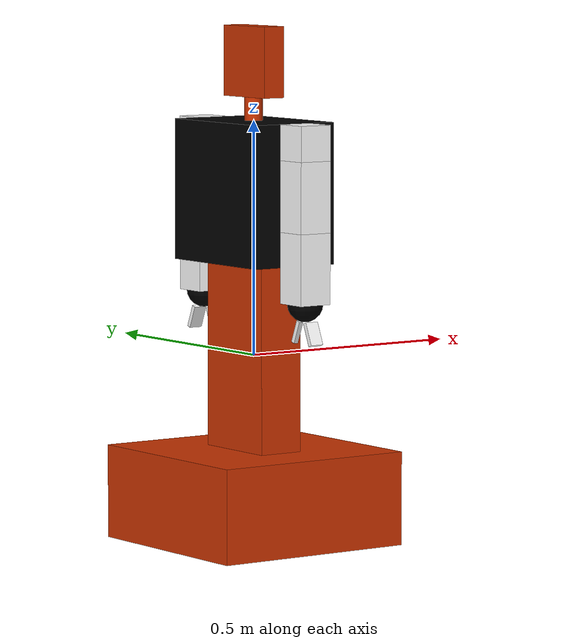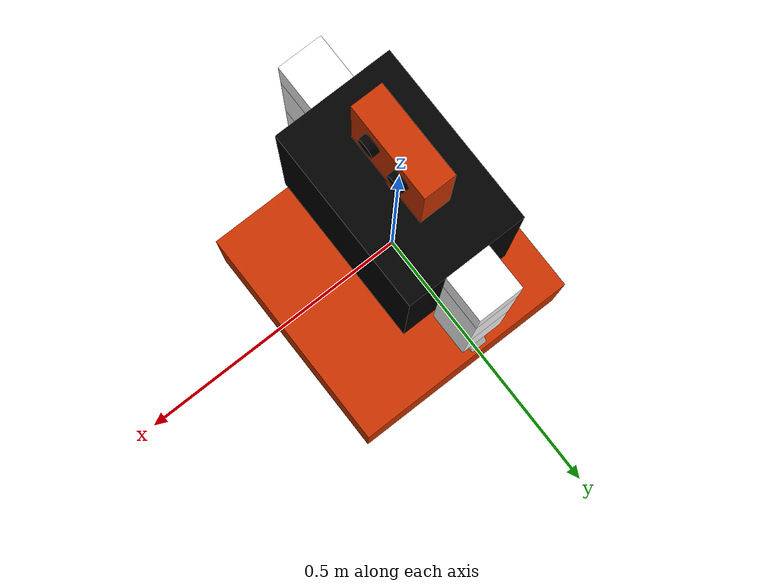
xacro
<?xml version="1.0"?>
<robot xmlns:xacro="http://www.ros.org/wiki/xacro" name="tangerige">

<!-- .......................MACROS.................... -->

  <xacro:macro name="default_physics" params="mass len rad">
  	<collision>
      <geometry>
        <cylinder length="${len}" radius="${rad}"/>
      </geometry>
    </collision>
  	<inertial>
  		<mass value="${mass}" />
  		<inertia ixx="1.0" ixy="0.0" ixz="0.0"
  											 iyy="1.0" iyz="0.0"
  											 izz="1.0" />
  	</inertial>
  	<dynamics damping="0.7" friction="1000.0"/>
  </xacro:macro>

  <xacro:macro name="gazebo_colors" params="name color">
  	<gazebo reference="${name}">
    	<material>Gazebo/${color}</material>
  	</gazebo>
  </xacro:macro>

<!-- ....................... END MACROS.................... -->

<!-- ................BASE................. -->

  <link name="base_laser">
    <visual>
      <geometry>
        <box size="0.2 0.1 0.4"/>
      </geometry>
      <material name="red">
      	<color rgba=".8 .2 0 1"/>
      </material>
      <origin rpy="0 0 1.57075"/>
    </visual>
    <xacro:default_physics mass="6" len="0.4" rad="0.1"/>
  </link>

  <xacro:gazebo_colors name="base_laser" color="Red" />

  <link name="base_link_robot">
    <visual>
      <geometry>
        <box size="0.45 0.45 0.2"/>
      </geometry>
      <material name="red">
      	<color rgba=".8 .2 0 1"/>
      </material>
    </visual>
    <xacro:default_physics mass="10" len="0.2" rad="0.225"/>
  </link>

  <xacro:gazebo_colors name="base_link" color="Red" />

  <joint name="laser_to_base_link" type="revolute">
  	<axis xyz="1 0 0"/>
  	<limit effort="1000.0" lower="0" upper="0" velocity="0"/>
    <parent link="base_laser"/>
    <child link="base_link_robot"/>
    <origin xyz="0 0 -0.3"/>
  </joint>

  <link name="superior_link">
    <visual>
      <geometry>
        <box size="0.3 0.2 0.3"/>
      </geometry>
      <material name="black">
      	<color rgba="0 0 0 1"/>
      </material>
    </visual>
    <xacro:default_physics mass="8" len="0.3" rad="0.15"/>
  </link>

  <xacro:gazebo_colors name="superior_link" color="Black" />

  <joint name="laser_to_superior_link" type="revolute">
  	<axis xyz="1 0 0"/>
  	<limit effort="1000.0" lower="0" upper="0" velocity="0"/>
    <parent link="base_laser"/>
    <child link="superior_link"/>
    <origin rpy="0 0 -1.57075" xyz="0 0 0.35"/>
  </joint>

  <!-- ................END BASE................. -->

  <!-- ................HEAD................. -->

  <link name="neck_link">
    <visual>
      <geometry>
        <cylinder length="0.05" radius="0.02"/>
      </geometry>
      <material name="red"/>
    </visual>
    <xacro:default_physics mass="0.5" len="0.05" rad="0.02"/>
  </link>

  <xacro:gazebo_colors name="neck_link" color="Red" />

  <joint name="superior_to_neck_link" type="revolute">
  	<axis xyz="1 0 0"/>
  	<limit effort="1000.0" lower="0" upper="0" velocity="0"/>
    <parent link="superior_link"/>
    <child link="neck_link"/>
    <origin xyz="0 0 0.175"/>
  </joint>

  <link name="neck_z_revolute">
  	<xacro:default_physics mass="0.01" len="0.01" rad="0.01"/>
  </link>

  <joint name="neck_to_z_revolute" type="revolute">
  	<axis xyz="0 0 1"/>
  	<limit effort="1000.0" lower="-0.7853" upper="0.7853" velocity="5"/>
    <parent link="neck_link"/>
    <child link="neck_z_revolute"/>
  </joint>

  <link name="neck_x_revolute">
  	<xacro:default_physics mass="0.01" len="0.01" rad="0.01"/>
  </link>

  <joint name="z_revolute_to_x_revolute" type="revolute">
  	<axis xyz="1 0 0"/>
  	<limit effort="1000.0" lower="-0.3926" upper="0.3926" velocity="5"/>
    <parent link="neck_z_revolute"/>
    <child link="neck_x_revolute"/>
  </joint>

  <link name="head">
    <visual>
      <geometry>
        <box size="0.15 0.05 0.15"/>
      </geometry>
      <material name="red"/>
    </visual>
    <xacro:default_physics mass="4" len="0.15" rad="0.075"/>
  </link>

  <xacro:gazebo_colors name="head" color="Red" />

  <joint name="revolute_head" type="revolute">
  	<axis xyz="1 0 0"/>
  	<limit effort="1000.0" lower="0" upper="0" velocity="0"/>
    <parent link="neck_x_revolute"/>
    <child link="head"/>
    <origin xyz="0 0 0.1"/>
  </joint>

  <link name="right_eye">
    <visual>
      <geometry>
        <cylinder length="0.015" radius="0.015"/>
      </geometry>
      <material name="black"/>
      <origin rpy="-1.57075 0 0" />
    </visual>
    <xacro:default_physics mass="0.2" len="0.03" rad="0.01"/>
  </link>

  <joint name="right_eye_to_head" type="revolute">
  	<axis xyz="1 0 0"/>
  	<limit effort="1000.0" lower="0" upper="0" velocity="0"/>
    <parent link="head"/>
    <child link="right_eye"/>
    <origin xyz="0.03 0.03 0.03"/>
  </joint>

  <link name="left_eye">
    <visual>
      <geometry>
        <cylinder length="0.015" radius="0.015"/>
      </geometry>
      <material name="black"/>
      <origin rpy="-1.57075 0 0" />
    </visual>
    <xacro:default_physics mass="0.2" len="0.03" rad="0.01"/>
  </link>

  <joint name="left_eye_to_head" type="revolute">
  	<axis xyz="1 0 0"/>
  	<limit effort="1000.0" lower="0" upper="0" velocity="0"/>
    <parent link="head"/>
    <child link="left_eye"/>
    <origin xyz="-0.03 0.03 0.03"/>
  </joint>

  <!-- ................END HEAD................. -->

  <!-- ................RIGHT ARM................. -->

  <link name="right_shoulder">
    <visual>
      <geometry>
        <box size="0.075 0.075 0.075"/>
      </geometry>
      <material name="white">
      	<color rgba="1 1 1 1"/>
      </material>
    </visual>
    <xacro:default_physics mass="2" len="0.075" rad="0.0375"/>
  </link>

  <xacro:gazebo_colors name="right_shoulder" color="Gray" />

  <joint name="right_shoulder_x_revolute" type="revolute">
  	<axis xyz="1 0 0"/>
  	<limit effort="1000.0" lower="-0.785375" upper="1.57075" velocity="5"/>
    <parent link="superior_link"/>
    <child link="right_shoulder"/>
    <origin xyz="0.1875 0 0.1125"/>
  </joint>

  <link name="upper_right_arm_z_revolute">
  	<xacro:default_physics mass="0.01" len="0.01" rad="0.01"/>
  </link>

  <joint name="upper_right_arm_z_revolute" type="revolute">
  	<axis xyz="0 0 1"/>
  	<limit effort="1000.0" lower="-0.3926" upper="0.3926" velocity="5"/>
    <parent link="right_shoulder"/>
    <child link="upper_right_arm_z_revolute"/>
    <origin xyz="0 0 0"/>
  </joint>

  <link name="upper_right_arm_y_revolute">
  	<xacro:default_physics mass="0.01" len="0.01" rad="0.01"/>
  </link>

  <joint name="upper_right_arm_y_revolute" type="revolute">
  	<axis xyz="0 1 0"/>
  	<limit effort="1000.0" lower="-0.3926" upper="0" velocity="5"/>
    <parent link="upper_right_arm_z_revolute"/>
    <child link="upper_right_arm_y_revolute"/>
    <origin xyz="0 0 0"/>
  </joint>

  <link name="upper_right_arm">
    <visual>
      <geometry>
        <box size="0.075 0.075 0.15"/>
      </geometry>
      <material name="white"/>
    </visual>
    <xacro:default_physics mass="3" len="0.15" rad="0.0375"/>
  </link>

  <xacro:gazebo_colors name="upper_right_arm" color="Gray" />

  <joint name="shoulder_to_upper_right_arm" type="revolute">
  	<axis xyz="1 0 0"/>
  	<limit effort="1000.0" lower="0" upper="0" velocity="0"/>
    <parent link="upper_right_arm_y_revolute"/>
    <child link="upper_right_arm"/>
    <origin xyz="0 0 -0.1125"/>
  </joint>

  <link name="lower_right_arm">
    <visual>
      <geometry>
        <box size="0.075 0.075 0.15"/>
      </geometry>
      <material name="white"/>
    </visual>
    <xacro:default_physics mass="0.5" len="0.15" rad="0.0375"/>
  </link>

  <xacro:gazebo_colors name="lower_right_arm" color="Gray" />

  <joint name="upper_to_lower_right_arm" type="revolute">
  	<axis xyz="1 0 0"/>
  	<limit effort="1000.0" lower="0" upper="0.3926" velocity="5"/>
    <parent link="upper_right_arm"/>
    <child link="lower_right_arm"/>
    <origin xyz="0 0 -0.15"/>
  </joint>

  <link name="wrist_right_arm_z_revolute">
  	<xacro:default_physics mass="0.01" len="0.01" rad="0.01"/>
  </link>

  <joint name="wrist_right_arm_z_revolute" type="revolute">
  	<axis xyz="0 0 1"/>
  	<limit effort="1000.0" lower="-2" upper="2" velocity="5"/>
    <parent link="lower_right_arm"/>
    <child link="wrist_right_arm_z_revolute"/>
  </joint>

  <link name="wrist_right_arm_x_revolute">
  	<xacro:default_physics mass="0.01" len="0.01" rad="0.01"/>
  </link>

  <joint name="wrist_right_arm_x_revolute" type="revolute">
  	<axis xyz="1 0 0"/>
  	<limit effort="1000.0" lower="-0.3926" upper="0.3926" velocity="5"/>
    <parent link="wrist_right_arm_z_revolute"/>
    <child link="wrist_right_arm_x_revolute"/>
  </joint>

  <link name="wrist_right_arm">
    <visual>
      <geometry>
        <sphere radius="0.0375"/>
      </geometry>
      <material name="black"/>
    </visual>
    <xacro:default_physics mass="1" len="0.075" rad="0.0375"/>
  </link>

  <xacro:gazebo_colors name="wrist_right_arm" color="Black" />

  <joint name="lower_to_wrist_right_arm" type="revolute">
  	<axis xyz="1 0 0"/>
  	<limit effort="1000.0" lower="0" upper="0" velocity="0"/>
    <parent link="wrist_right_arm_x_revolute"/>
    <child link="wrist_right_arm"/>
    <origin xyz="0 0 -0.075"/>
  </joint>

  <link name="finger1_right_arm">
    <visual>
      <geometry>
        <box size="0.01 0.01 0.05"/>
      </geometry>
      <origin xyz="0 0 -0.025" />
      <material name="white"/>
    </visual>
    <xacro:default_physics mass="0.2" len="0.05" rad="0.005"/>
  </link>

  <xacro:gazebo_colors name="finger1_right_arm" color="Gray" />

  <joint name="wrist_to_finger1_right_arm" type="revolute">
  	<axis xyz="0 1 0"/>
  	<limit effort="1000.0" lower="0" upper="-0.68" velocity="5"/>
    <parent link="wrist_right_arm"/>
    <child link="finger1_right_arm"/>
    <origin rpy="0 0.3926875 0" xyz="-0.01875 0 -0.0375"/>
  </joint>

  <link name="finger2_right_arm">
    <visual>
      <geometry>
        <box size="0.01 0.03 0.05"/>
      </geometry>
      <origin xyz="0 0 -0.025" />
      <material name="white"/>
    </visual>
    <xacro:default_physics mass="0.2" len="0.05" rad="0.005"/>
  </link>

  <xacro:gazebo_colors name="finger2_right_arm" color="Gray" />

  <joint name="wrist_to_finger2_right_arm" type="revolute">
  	<axis xyz="0 1 0"/>
  	<limit effort="1000.0" lower="0.68" upper="0" velocity="5"/>
    <parent link="wrist_right_arm"/>
    <child link="finger2_right_arm"/>
    <origin rpy="0 -0.3926875 0" xyz="0.01875 0 -0.0375"/>
  </joint>

  <!-- ................END RIGHT ARM................. -->

    <!-- ................LEFT ARM................. -->

  <link name="left_shoulder">
    <visual>
      <geometry>
        <box size="0.075 0.075 0.075"/>
      </geometry>
      <material name="white"/>
    </visual>
    <xacro:default_physics mass="2" len="0.075" rad="0.0375"/>
  </link>

  <xacro:gazebo_colors name="left_shoulder" color="Gray" />

  <joint name="left_shoulder_x_revolute" type="revolute">
  	<axis xyz="1 0 0"/>
  	<limit effort="1000.0" lower="-0.785375" upper="1.57075" velocity="5"/>
    <parent link="superior_link"/>
    <child link="left_shoulder"/>
    <origin xyz="-0.1875 0 0.1125"/>
  </joint>

  <link name="upper_left_arm_z_revolute">
  	<xacro:default_physics mass="0.01" len="0.01" rad="0.01"/>
  </link>

  <joint name="upper_left_arm_z_revolute" type="revolute">
  	<axis xyz="0 0 1"/>
  	<limit effort="1000.0" lower="-0.3926" upper="0.3926" velocity="5"/>
    <parent link="left_shoulder"/>
    <child link="upper_left_arm_z_revolute"/>
    <origin xyz="0 0 0"/>
  </joint>

  <link name="upper_left_arm_y_revolute">
  	<xacro:default_physics mass="0.01" len="0.01" rad="0.01"/>
  </link>

  <joint name="upper_left_arm_y_revolute" type="revolute">
  	<axis xyz="0 1 0"/>
  	<limit effort="1000.0" lower="-0.3926" upper="0" velocity="5"/>
    <parent link="upper_left_arm_z_revolute"/>
    <child link="upper_left_arm_y_revolute"/>
    <origin xyz="0 0 0"/>
  </joint>

  <link name="upper_left_arm">
    <visual>
      <geometry>
        <box size="0.075 0.075 0.15"/>
      </geometry>
      <material name="white"/>
    </visual>
    <xacro:default_physics mass="0.5" len="0.15" rad="0.0375"/>
  </link>

  <xacro:gazebo_colors name="upper_left_arm" color="Gray" />

  <joint name="shoulder_to_upper_left_arm" type="revolute">
  	<axis xyz="1 0 0"/>
  	<limit effort="1000.0" lower="0" upper="0" velocity="0"/>
    <parent link="upper_left_arm_y_revolute"/>
    <child link="upper_left_arm"/>
    <origin xyz="0 0 -0.1125"/>
  </joint>

  <link name="lower_left_arm">
    <visual>
      <geometry>
        <box size="0.075 0.075 0.15"/>
      </geometry>
      <material name="white"/>
    </visual>
    <xacro:default_physics mass="3" len="0.15" rad="0.0375"/>
  </link>

  <xacro:gazebo_colors name="lower_left_arm" color="Gray" />

  <joint name="upper_to_lower_left_arm" type="revolute">
  	<axis xyz="1 0 0"/>
  	<limit effort="1000.0" lower="0" upper="0.3926" velocity="5"/>
    <parent link="upper_left_arm"/>
    <child link="lower_left_arm"/>
    <origin xyz="0 0 -0.15"/>
  </joint>

  <link name="wrist_left_arm_z_revolute">
  	<xacro:default_physics mass="0.01" len="0.01" rad="0.01"/>
  </link>

  <joint name="wrist_left_arm_z_revolute" type="revolute">
  	<axis xyz="0 0 1"/>
  	<limit effort="1000.0" lower="-2" upper="2" velocity="5"/>
    <parent link="lower_left_arm"/>
    <child link="wrist_left_arm_z_revolute"/>
  </joint>

  <link name="wrist_left_arm_x_revolute">
  	<xacro:default_physics mass="0.01" len="0.01" rad="0.01"/>
  </link>

  <joint name="wrist_left_arm_x_revolute" type="revolute">
  	<axis xyz="1 0 0"/>
  	<limit effort="1000.0" lower="-0.3926" upper="0.3926" velocity="5"/>
    <parent link="wrist_left_arm_z_revolute"/>
    <child link="wrist_left_arm_x_revolute"/>
  </joint>

  <link name="wrist_left_arm">
    <visual>
      <geometry>
        <sphere radius="0.0375"/>
      </geometry>
      <material name="black"/>
    </visual>
    <xacro:default_physics mass="1" len="0.075" rad="0.0375"/>
  </link>

  <xacro:gazebo_colors name="wrist_left_arm" color="Black" />

  <joint name="lower_to_wrist_left_arm" type="revolute">
  	<axis xyz="1 0 0"/>
  	<limit effort="1000.0" lower="0" upper="0" velocity="0"/>
    <parent link="wrist_left_arm_x_revolute"/>
    <child link="wrist_left_arm"/>
    <origin xyz="0 0 -0.075"/>
  </joint>

  <link name="finger1_left_arm">
    <visual>
      <geometry>
        <box size="0.01 0.01 0.05"/>
      </geometry>
      <origin xyz="0 0 -0.025" />
      <material name="white"/>
    </visual>
    <xacro:default_physics mass="0.2" len="0.05" rad="0.005"/>
  </link>

  <xacro:gazebo_colors name="finger1_left_arm" color="Gray" />

  <joint name="wrist_to_finger1_left_arm" type="revolute">
  	<axis xyz="0 1 0"/>
  	<limit effort="1000.0" lower="0.68" upper="0" velocity="5"/>
    <parent link="wrist_left_arm"/>
    <child link="finger1_left_arm"/>
    <origin rpy="0 -0.3926875 0" xyz="0.01875 0 -0.0375"/>
  </joint>

  <link name="finger2_left_arm">
    <visual>
      <geometry>
        <box size="0.01 0.03 0.05"/>
      </geometry>
      <origin xyz="0 0 -0.025" />
      <material name="white"/>
    </visual>
    <xacro:default_physics mass="0.2" len="0.05" rad="0.005"/>
  </link>

  <xacro:gazebo_colors name="finger2_left_arm" color="Gray" />

  <joint name="wrist_to_finger2_left_arm" type="revolute">
  	<axis xyz="0 1 0"/>
  	<limit effort="1000.0" lower="0" upper="-0.68" velocity="5"/>
    <parent link="wrist_left_arm"/>
    <child link="finger2_left_arm"/>
    <origin rpy="0 0.3926875 0" xyz="-0.01875 0 -0.0375"/>
  </joint>

  <!-- ................END LEFT ARM................. -->

</robot>
